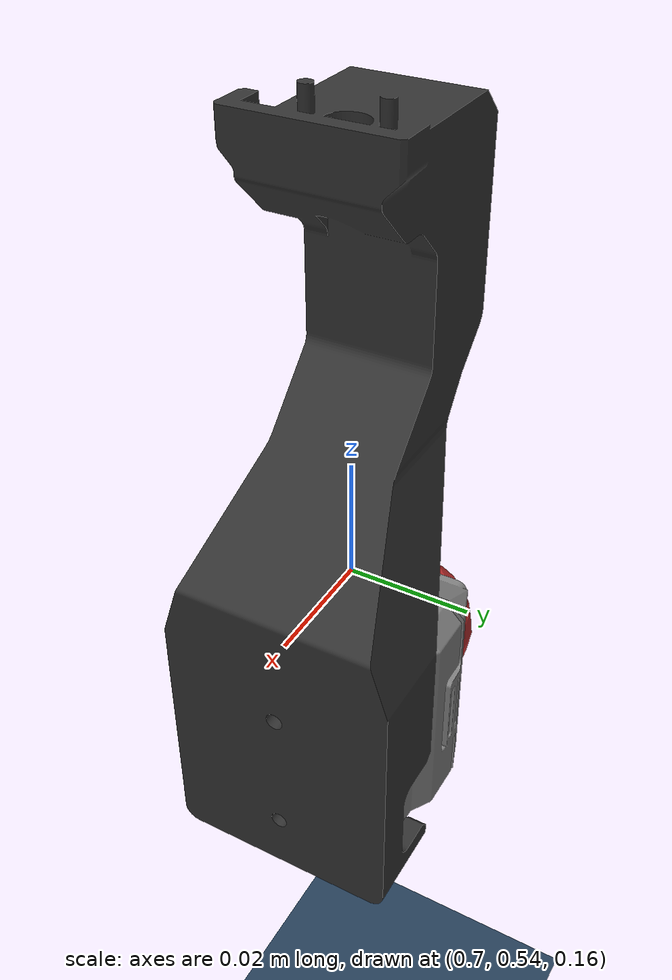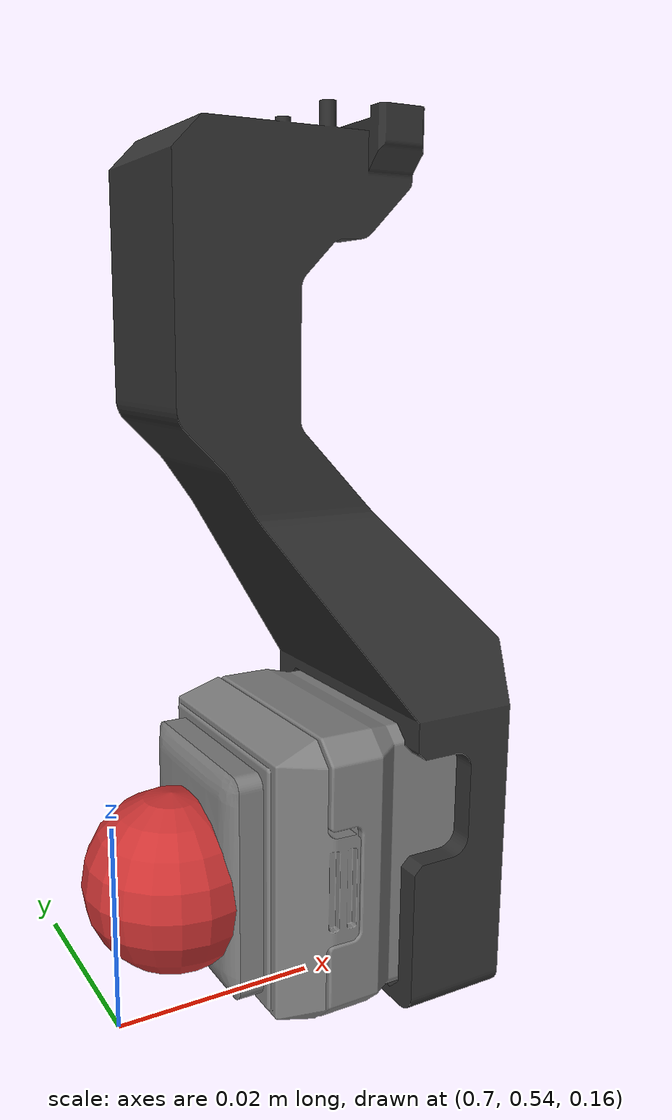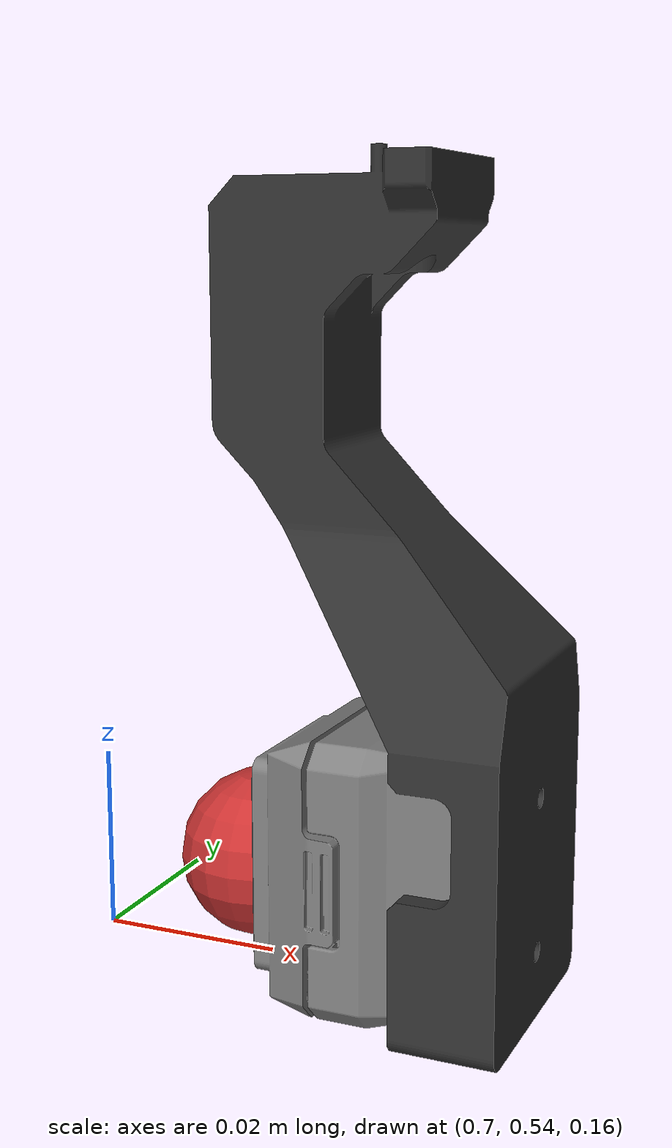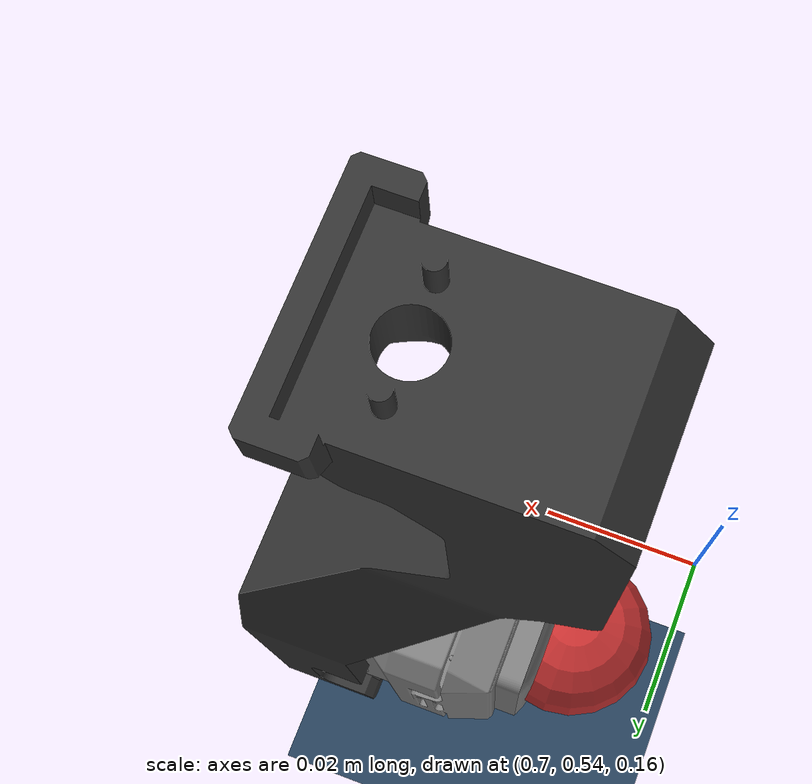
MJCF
<mujoco model="gripper_camera_flipped_and_fixed">

    <option gravity="0 0 0"/>
    <compiler meshdir="assets/"/>

    <asset>
        <mesh name="gelsight_mini_mesh" file="gsmini_shell.stl" scale="0.001 0.001 0.001"/>

        <mesh name="gripper_connector_mesh" file="gripper_connector.stl" scale="1 1 1"/>

        <texture type="skybox" builtin="gradient" rgb1="0.3 0.5 0.7" rgb2="0 0 0" width="512" height="3072"/>
        <texture type="2d" name="groundplane" builtin="checker" mark="edge" rgb1="0.2 0.3 0.4" rgb2="0.1 0.2 0.3" markrgb="0.8 0.8 0.8" width="300" height="300"/>
        <material name="groundplane" texture="groundplane" texuniform="true" texrepeat="5 5" reflectance="0.2"/>
    </asset>

    <visual>
        <global azimuth="90" elevation="-30"/>
    </visual>

    <worldbody>
        <light pos="0 0 10" dir="0 0 -1" directional="true"/>
        <geom name="floor" size="2 2 0.05" type="plane" material="groundplane" pos="0 0 0.07"/>

        <body name="gripper_connector" pos="0.71 0.57 0.15" euler="90 0 0">
            <joint name="gripper_joint" type="slide" axis="0 0 1" range="-0.06 0"/>
            <geom type="mesh" mesh="gripper_connector_mesh" mass="0.5" rgba="0.2 0.2 0.2 1"/>

            <body name="gelsight_mini" pos="0.0272 0.017 0.015" euler="0 0 90">
                <geom name="gelsight_geom" type="mesh" mesh="gelsight_mini_mesh" mass="0.3"/>
                <camera name="gelsight_mini" mode="fixed" fovy="38" quat="1 1 0 0" pos="0.001 -0.01 0" />
            </body>
        </body>

        <body name="target_object" pos="0.712 0.555 0.165">

            <joint name="ball_x" type="slide" axis="1 0 0" damping="1.0" />
            <joint name="ball_y" type="slide" axis="0 1 0" damping="1.0" />
            <joint name="ball_z" type="slide" axis="0 0 1" damping="1.0" />

            <geom type="sphere" size="0.01" rgba="0.8 0.2 0.2 1"/>
        </body>
    </worldbody>

    <actuator>
        <position name="motor_x" joint="ball_x" kp="200" ctrlrange="-0.1 0.1"/>
        <position name="motor_y" joint="ball_y" kp="200" ctrlrange="-0.1 0.1"/>
        <position name="motor_z" joint="ball_z" kp="200" ctrlrange="-0.1 0.1"/>
    </actuator>
</mujoco>
